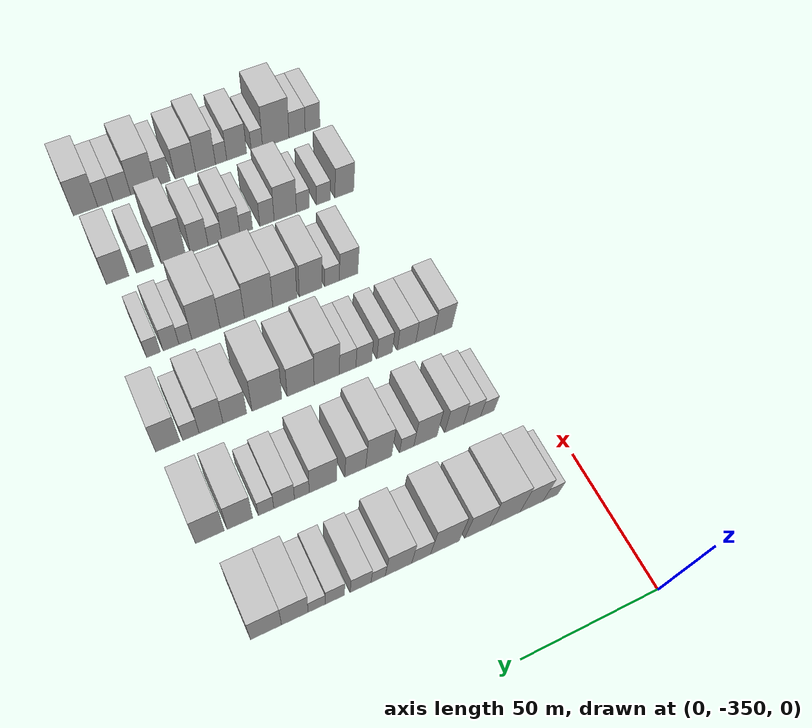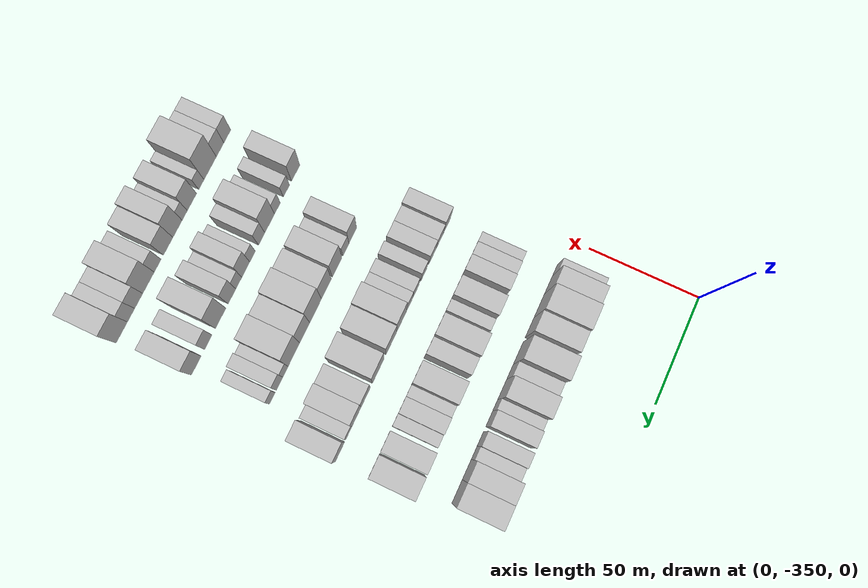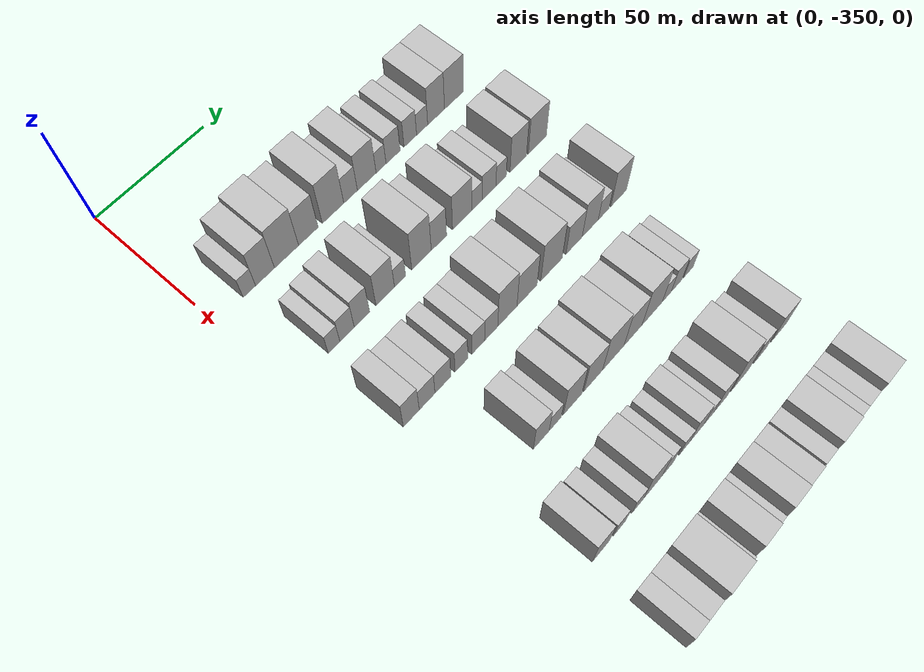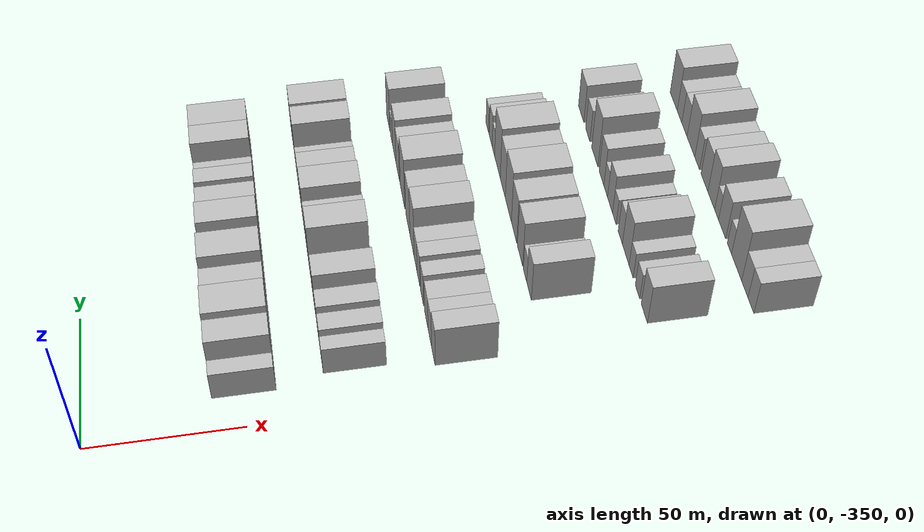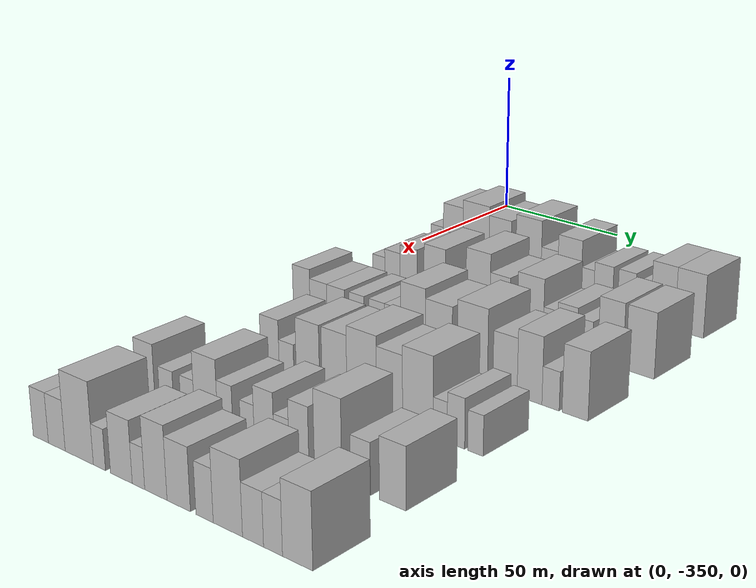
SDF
<sdf version="1.6">
 <world name="default">
  <model name="building_28">
   <static>1</static>
   <pose>50.0000 -334.9886 0 0.000000 0.000000 0.000000</pose>
   <link name="link">
    <pose>0 0 6.00 0 0 0</pose>
    <collision name="collision"><geometry><box><size>20.0000 5.6591 12.0000</size></box></geometry></collision>
    <visual name="visual">
     <cast_shadows>0</cast_shadows>
     <geometry><box><size>20.0000 5.6591 12.0000</size></box></geometry>
     <material>
      <script>
       <uri>model://HANNAS_wall/materials/scripts</uri>
       <uri>model://HANNAS_wall/materials/textures</uri>
       <name>vrc/HANNAS_wall</name>
      </script>
     </material>
    </visual>
   </link>
  </model>
  <model name="building_29">
   <static>1</static>
   <pose>50.0000 -327.7946 0 0.000000 0.000000 0.000000</pose>
   <link name="link">
    <pose>0 0 10.50 0 0 0</pose>
    <collision name="collision"><geometry><box><size>20.0000 8.7289 21.0000</size></box></geometry></collision>
    <visual name="visual">
     <cast_shadows>0</cast_shadows>
     <geometry><box><size>20.0000 8.7289 21.0000</size></box></geometry>
     <material>
      <script>
       <uri>model://HANNAS_wall/materials/scripts</uri>
       <uri>model://HANNAS_wall/materials/textures</uri>
       <name>vrc/HANNAS_wall</name>
      </script>
     </material>
    </visual>
   </link>
  </model>
  <model name="building_30">
   <static>1</static>
   <pose>50.0000 -317.7794 0 0.000000 0.000000 0.000000</pose>
   <link name="link">
    <pose>0 0 12.00 0 0 0</pose>
    <collision name="collision"><geometry><box><size>20.0000 11.3015 24.0000</size></box></geometry></collision>
    <visual name="visual">
     <cast_shadows>0</cast_shadows>
     <geometry><box><size>20.0000 11.3015 24.0000</size></box></geometry>
     <material>
      <script>
       <uri>model://HANNAS_wall/materials/scripts</uri>
       <uri>model://HANNAS_wall/materials/textures</uri>
       <name>vrc/HANNAS_wall</name>
      </script>
     </material>
    </visual>
   </link>
  </model>
  <model name="building_31">
   <static>1</static>
   <pose>50.0000 -307.4623 0 0.000000 0.000000 0.000000</pose>
   <link name="link">
    <pose>0 0 10.50 0 0 0</pose>
    <collision name="collision"><geometry><box><size>20.0000 9.3325 21.0000</size></box></geometry></collision>
    <visual name="visual">
     <cast_shadows>0</cast_shadows>
     <geometry><box><size>20.0000 9.3325 21.0000</size></box></geometry>
     <material>
      <script>
       <uri>model://HANNAS_wall/materials/scripts</uri>
       <uri>model://HANNAS_wall/materials/textures</uri>
       <name>vrc/HANNAS_wall</name>
      </script>
     </material>
    </visual>
   </link>
  </model>
  <model name="building_32">
   <static>1</static>
   <pose>50.0000 -295.5357 0 0.000000 0.000000 0.000000</pose>
   <link name="link">
    <pose>0 0 12.00 0 0 0</pose>
    <collision name="collision"><geometry><box><size>20.0000 10.5207 24.0000</size></box></geometry></collision>
    <visual name="visual">
     <cast_shadows>0</cast_shadows>
     <geometry><box><size>20.0000 10.5207 24.0000</size></box></geometry>
     <material>
      <script>
       <uri>model://HANNAS_wall/materials/scripts</uri>
       <uri>model://HANNAS_wall/materials/textures</uri>
       <name>vrc/HANNAS_wall</name>
      </script>
     </material>
    </visual>
   </link>
  </model>
  <model name="building_33">
   <static>1</static>
   <pose>50.0000 -286.8878 0 0.000000 0.000000 0.000000</pose>
   <link name="link">
    <pose>0 0 7.50 0 0 0</pose>
    <collision name="collision"><geometry><box><size>20.0000 6.7751 15.0000</size></box></geometry></collision>
    <visual name="visual">
     <cast_shadows>0</cast_shadows>
     <geometry><box><size>20.0000 6.7751 15.0000</size></box></geometry>
     <material>
      <script>
       <uri>model://HANNAS_wall/materials/scripts</uri>
       <uri>model://HANNAS_wall/materials/textures</uri>
       <name>vrc/HANNAS_wall</name>
      </script>
     </material>
    </visual>
   </link>
  </model>
  <model name="building_34">
   <static>1</static>
   <pose>50.0000 -278.7941 0 0.000000 0.000000 0.000000</pose>
   <link name="link">
    <pose>0 0 10.50 0 0 0</pose>
    <collision name="collision"><geometry><box><size>20.0000 9.4123 21.0000</size></box></geometry></collision>
    <visual name="visual">
     <cast_shadows>0</cast_shadows>
     <geometry><box><size>20.0000 9.4123 21.0000</size></box></geometry>
     <material>
      <script>
       <uri>model://HANNAS_wall/materials/scripts</uri>
       <uri>model://HANNAS_wall/materials/textures</uri>
       <name>vrc/HANNAS_wall</name>
      </script>
     </material>
    </visual>
   </link>
  </model>
  <model name="building_35">
   <static>1</static>
   <pose>50.0000 -271.5590 0 0.000000 0.000000 0.000000</pose>
   <link name="link">
    <pose>0 0 6.00 0 0 0</pose>
    <collision name="collision"><geometry><box><size>20.0000 5.0578 12.0000</size></box></geometry></collision>
    <visual name="visual">
     <cast_shadows>0</cast_shadows>
     <geometry><box><size>20.0000 5.0578 12.0000</size></box></geometry>
     <material>
      <script>
       <uri>model://HANNAS_wall/materials/scripts</uri>
       <uri>model://HANNAS_wall/materials/textures</uri>
       <name>vrc/HANNAS_wall</name>
      </script>
     </material>
    </visual>
   </link>
  </model>
  <model name="building_36">
   <static>1</static>
   <pose>50.0000 -265.3924 0 0.000000 0.000000 0.000000</pose>
   <link name="link">
    <pose>0 0 7.50 0 0 0</pose>
    <collision name="collision"><geometry><box><size>20.0000 7.2756 15.0000</size></box></geometry></collision>
    <visual name="visual">
     <cast_shadows>0</cast_shadows>
     <geometry><box><size>20.0000 7.2756 15.0000</size></box></geometry>
     <material>
      <script>
       <uri>model://HANNAS_wall/materials/scripts</uri>
       <uri>model://HANNAS_wall/materials/textures</uri>
       <name>vrc/HANNAS_wall</name>
      </script>
     </material>
    </visual>
   </link>
  </model>
  <model name="building_37">
   <static>1</static>
   <pose>50.0000 -256.4576 0 0.000000 0.000000 0.000000</pose>
   <link name="link">
    <pose>0 0 7.50 0 0 0</pose>
    <collision name="collision"><geometry><box><size>20.0000 6.5939 15.0000</size></box></geometry></collision>
    <visual name="visual">
     <cast_shadows>0</cast_shadows>
     <geometry><box><size>20.0000 6.5939 15.0000</size></box></geometry>
     <material>
      <script>
       <uri>model://HANNAS_wall/materials/scripts</uri>
       <uri>model://HANNAS_wall/materials/textures</uri>
       <name>vrc/HANNAS_wall</name>
      </script>
     </material>
    </visual>
   </link>
  </model>
  <model name="building_38">
   <static>1</static>
   <pose>50.0000 -250.2285 0 0.000000 0.000000 0.000000</pose>
   <link name="link">
    <pose>0 0 6.00 0 0 0</pose>
    <collision name="collision"><geometry><box><size>20.0000 5.8642 12.0000</size></box></geometry></collision>
    <visual name="visual">
     <cast_shadows>0</cast_shadows>
     <geometry><box><size>20.0000 5.8642 12.0000</size></box></geometry>
     <material>
      <script>
       <uri>model://HANNAS_wall/materials/scripts</uri>
       <uri>model://HANNAS_wall/materials/textures</uri>
       <name>vrc/HANNAS_wall</name>
      </script>
     </material>
    </visual>
   </link>
  </model>
  <model name="building_39">
   <static>1</static>
   <pose>50.0000 -242.7977 0 0.000000 0.000000 0.000000</pose>
   <link name="link">
    <pose>0 0 10.50 0 0 0</pose>
    <collision name="collision"><geometry><box><size>20.0000 8.9975 21.0000</size></box></geometry></collision>
    <visual name="visual">
     <cast_shadows>0</cast_shadows>
     <geometry><box><size>20.0000 8.9975 21.0000</size></box></geometry>
     <material>
      <script>
       <uri>model://HANNAS_wall/materials/scripts</uri>
       <uri>model://HANNAS_wall/materials/textures</uri>
       <name>vrc/HANNAS_wall</name>
      </script>
     </material>
    </visual>
   </link>
  </model>
  <model name="building_40">
   <static>1</static>
   <pose>50.0000 -233.1098 0 0.000000 0.000000 0.000000</pose>
   <link name="link">
    <pose>0 0 10.50 0 0 0</pose>
    <collision name="collision"><geometry><box><size>20.0000 10.3783 21.0000</size></box></geometry></collision>
    <visual name="visual">
     <cast_shadows>0</cast_shadows>
     <geometry><box><size>20.0000 10.3783 21.0000</size></box></geometry>
     <material>
      <script>
       <uri>model://HANNAS_wall/materials/scripts</uri>
       <uri>model://HANNAS_wall/materials/textures</uri>
       <name>vrc/HANNAS_wall</name>
      </script>
     </material>
    </visual>
   </link>
  </model>
  <model name="building_156">
   <static>1</static>
   <pose>85.0000 -331.0874 0 0.000000 0.000000 0.000000</pose>
   <link name="link">
    <pose>0 0 6.00 0 0 0</pose>
    <collision name="collision"><geometry><box><size>20.0000 5.3848 12.0000</size></box></geometry></collision>
    <visual name="visual">
     <cast_shadows>0</cast_shadows>
     <geometry><box><size>20.0000 5.3848 12.0000</size></box></geometry>
     <material>
      <script>
       <uri>model://HANNAS_wall/materials/scripts</uri>
       <uri>model://HANNAS_wall/materials/textures</uri>
       <name>vrc/HANNAS_wall</name>
      </script>
     </material>
    </visual>
   </link>
  </model>
  <model name="building_157">
   <static>1</static>
   <pose>85.0000 -325.0475 0 0.000000 0.000000 0.000000</pose>
   <link name="link">
    <pose>0 0 7.50 0 0 0</pose>
    <collision name="collision"><geometry><box><size>20.0000 6.6949 15.0000</size></box></geometry></collision>
    <visual name="visual">
     <cast_shadows>0</cast_shadows>
     <geometry><box><size>20.0000 6.6949 15.0000</size></box></geometry>
     <material>
      <script>
       <uri>model://HANNAS_wall/materials/scripts</uri>
       <uri>model://HANNAS_wall/materials/textures</uri>
       <name>vrc/HANNAS_wall</name>
      </script>
     </material>
    </visual>
   </link>
  </model>
  <model name="building_158">
   <static>1</static>
   <pose>85.0000 -318.0757 0 0.000000 0.000000 0.000000</pose>
   <link name="link">
    <pose>0 0 9.00 0 0 0</pose>
    <collision name="collision"><geometry><box><size>20.0000 7.2486 18.0000</size></box></geometry></collision>
    <visual name="visual">
     <cast_shadows>0</cast_shadows>
     <geometry><box><size>20.0000 7.2486 18.0000</size></box></geometry>
     <material>
      <script>
       <uri>model://HANNAS_wall/materials/scripts</uri>
       <uri>model://HANNAS_wall/materials/textures</uri>
       <name>vrc/HANNAS_wall</name>
      </script>
     </material>
    </visual>
   </link>
  </model>
  <model name="building_159">
   <static>1</static>
   <pose>85.0000 -306.9884 0 0.000000 0.000000 0.000000</pose>
   <link name="link">
    <pose>0 0 10.50 0 0 0</pose>
    <collision name="collision"><geometry><box><size>20.0000 8.9261 21.0000</size></box></geometry></collision>
    <visual name="visual">
     <cast_shadows>0</cast_shadows>
     <geometry><box><size>20.0000 8.9261 21.0000</size></box></geometry>
     <material>
      <script>
       <uri>model://HANNAS_wall/materials/scripts</uri>
       <uri>model://HANNAS_wall/materials/textures</uri>
       <name>vrc/HANNAS_wall</name>
      </script>
     </material>
    </visual>
   </link>
  </model>
  <model name="building_160">
   <static>1</static>
   <pose>85.0000 -299.8065 0 0.000000 0.000000 0.000000</pose>
   <link name="link">
    <pose>0 0 6.00 0 0 0</pose>
    <collision name="collision"><geometry><box><size>20.0000 5.4377 12.0000</size></box></geometry></collision>
    <visual name="visual">
     <cast_shadows>0</cast_shadows>
     <geometry><box><size>20.0000 5.4377 12.0000</size></box></geometry>
     <material>
      <script>
       <uri>model://HANNAS_wall/materials/scripts</uri>
       <uri>model://HANNAS_wall/materials/textures</uri>
       <name>vrc/HANNAS_wall</name>
      </script>
     </material>
    </visual>
   </link>
  </model>
  <model name="building_161">
   <static>1</static>
   <pose>85.0000 -289.2377 0 0.000000 0.000000 0.000000</pose>
   <link name="link">
    <pose>0 0 12.00 0 0 0</pose>
    <collision name="collision"><geometry><box><size>20.0000 9.6999 24.0000</size></box></geometry></collision>
    <visual name="visual">
     <cast_shadows>0</cast_shadows>
     <geometry><box><size>20.0000 9.6999 24.0000</size></box></geometry>
     <material>
      <script>
       <uri>model://HANNAS_wall/materials/scripts</uri>
       <uri>model://HANNAS_wall/materials/textures</uri>
       <name>vrc/HANNAS_wall</name>
      </script>
     </material>
    </visual>
   </link>
  </model>
  <model name="building_162">
   <static>1</static>
   <pose>85.0000 -280.5113 0 0.000000 0.000000 0.000000</pose>
   <link name="link">
    <pose>0 0 9.00 0 0 0</pose>
    <collision name="collision"><geometry><box><size>20.0000 7.7529 18.0000</size></box></geometry></collision>
    <visual name="visual">
     <cast_shadows>0</cast_shadows>
     <geometry><box><size>20.0000 7.7529 18.0000</size></box></geometry>
     <material>
      <script>
       <uri>model://HANNAS_wall/materials/scripts</uri>
       <uri>model://HANNAS_wall/materials/textures</uri>
       <name>vrc/HANNAS_wall</name>
      </script>
     </material>
    </visual>
   </link>
  </model>
  <model name="building_163">
   <static>1</static>
   <pose>85.0000 -268.6424 0 0.000000 0.000000 0.000000</pose>
   <link name="link">
    <pose>0 0 10.50 0 0 0</pose>
    <collision name="collision"><geometry><box><size>20.0000 9.9849 21.0000</size></box></geometry></collision>
    <visual name="visual">
     <cast_shadows>0</cast_shadows>
     <geometry><box><size>20.0000 9.9849 21.0000</size></box></geometry>
     <material>
      <script>
       <uri>model://HANNAS_wall/materials/scripts</uri>
       <uri>model://HANNAS_wall/materials/textures</uri>
       <name>vrc/HANNAS_wall</name>
      </script>
     </material>
    </visual>
   </link>
  </model>
  <model name="building_164">
   <static>1</static>
   <pose>85.0000 -260.9876 0 0.000000 0.000000 0.000000</pose>
   <link name="link">
    <pose>0 0 6.00 0 0 0</pose>
    <collision name="collision"><geometry><box><size>20.0000 5.3248 12.0000</size></box></geometry></collision>
    <visual name="visual">
     <cast_shadows>0</cast_shadows>
     <geometry><box><size>20.0000 5.3248 12.0000</size></box></geometry>
     <material>
      <script>
       <uri>model://HANNAS_wall/materials/scripts</uri>
       <uri>model://HANNAS_wall/materials/textures</uri>
       <name>vrc/HANNAS_wall</name>
      </script>
     </material>
    </visual>
   </link>
  </model>
  <model name="building_165">
   <static>1</static>
   <pose>85.0000 -254.6397 0 0.000000 0.000000 0.000000</pose>
   <link name="link">
    <pose>0 0 7.50 0 0 0</pose>
    <collision name="collision"><geometry><box><size>20.0000 7.3711 15.0000</size></box></geometry></collision>
    <visual name="visual">
     <cast_shadows>0</cast_shadows>
     <geometry><box><size>20.0000 7.3711 15.0000</size></box></geometry>
     <material>
      <script>
       <uri>model://HANNAS_wall/materials/scripts</uri>
       <uri>model://HANNAS_wall/materials/textures</uri>
       <name>vrc/HANNAS_wall</name>
      </script>
     </material>
    </visual>
   </link>
  </model>
  <model name="building_166">
   <static>1</static>
   <pose>85.0000 -248.1887 0 0.000000 0.000000 0.000000</pose>
   <link name="link">
    <pose>0 0 6.00 0 0 0</pose>
    <collision name="collision"><geometry><box><size>20.0000 5.5309 12.0000</size></box></geometry></collision>
    <visual name="visual">
     <cast_shadows>0</cast_shadows>
     <geometry><box><size>20.0000 5.5309 12.0000</size></box></geometry>
     <material>
      <script>
       <uri>model://HANNAS_wall/materials/scripts</uri>
       <uri>model://HANNAS_wall/materials/textures</uri>
       <name>vrc/HANNAS_wall</name>
      </script>
     </material>
    </visual>
   </link>
  </model>
  <model name="building_167">
   <static>1</static>
   <pose>85.0000 -238.9296 0 0.000000 0.000000 0.000000</pose>
   <link name="link">
    <pose>0 0 10.50 0 0 0</pose>
    <collision name="collision"><geometry><box><size>20.0000 8.9874 21.0000</size></box></geometry></collision>
    <visual name="visual">
     <cast_shadows>0</cast_shadows>
     <geometry><box><size>20.0000 8.9874 21.0000</size></box></geometry>
     <material>
      <script>
       <uri>model://HANNAS_wall/materials/scripts</uri>
       <uri>model://HANNAS_wall/materials/textures</uri>
       <name>vrc/HANNAS_wall</name>
      </script>
     </material>
    </visual>
   </link>
  </model>
  <model name="building_168">
   <static>1</static>
   <pose>85.0000 -228.4484 0 0.000000 0.000000 0.000000</pose>
   <link name="link">
    <pose>0 0 10.50 0 0 0</pose>
    <collision name="collision"><geometry><box><size>20.0000 9.9750 21.0000</size></box></geometry></collision>
    <visual name="visual">
     <cast_shadows>0</cast_shadows>
     <geometry><box><size>20.0000 9.9750 21.0000</size></box></geometry>
     <material>
      <script>
       <uri>model://HANNAS_wall/materials/scripts</uri>
       <uri>model://HANNAS_wall/materials/textures</uri>
       <name>vrc/HANNAS_wall</name>
      </script>
     </material>
    </visual>
   </link>
  </model>
  <model name="building_264">
   <static>1</static>
   <pose>120.0000 -332.6612 0 0.000000 0.000000 0.000000</pose>
   <link name="link">
    <pose>0 0 9.00 0 0 0</pose>
    <collision name="collision"><geometry><box><size>20.0000 7.3683 18.0000</size></box></geometry></collision>
    <visual name="visual">
     <cast_shadows>0</cast_shadows>
     <geometry><box><size>20.0000 7.3683 18.0000</size></box></geometry>
     <material>
      <script>
       <uri>model://HANNAS_wall/materials/scripts</uri>
       <uri>model://HANNAS_wall/materials/textures</uri>
       <name>vrc/HANNAS_wall</name>
      </script>
     </material>
    </visual>
   </link>
  </model>
  <model name="building_265">
   <static>1</static>
   <pose>120.0000 -325.2985 0 0.000000 0.000000 0.000000</pose>
   <link name="link">
    <pose>0 0 7.50 0 0 0</pose>
    <collision name="collision"><geometry><box><size>20.0000 7.3570 15.0000</size></box></geometry></collision>
    <visual name="visual">
     <cast_shadows>0</cast_shadows>
     <geometry><box><size>20.0000 7.3570 15.0000</size></box></geometry>
     <material>
      <script>
       <uri>model://HANNAS_wall/materials/scripts</uri>
       <uri>model://HANNAS_wall/materials/textures</uri>
       <name>vrc/HANNAS_wall</name>
      </script>
     </material>
    </visual>
   </link>
  </model>
  <model name="building_266">
   <static>1</static>
   <pose>120.0000 -317.8775 0 0.000000 0.000000 0.000000</pose>
   <link name="link">
    <pose>0 0 7.50 0 0 0</pose>
    <collision name="collision"><geometry><box><size>20.0000 7.4851 15.0000</size></box></geometry></collision>
    <visual name="visual">
     <cast_shadows>0</cast_shadows>
     <geometry><box><size>20.0000 7.4851 15.0000</size></box></geometry>
     <material>
      <script>
       <uri>model://HANNAS_wall/materials/scripts</uri>
       <uri>model://HANNAS_wall/materials/textures</uri>
       <name>vrc/HANNAS_wall</name>
      </script>
     </material>
    </visual>
   </link>
  </model>
  <model name="building_267">
   <static>1</static>
   <pose>120.0000 -309.0582 0 0.000000 0.000000 0.000000</pose>
   <link name="link">
    <pose>0 0 7.50 0 0 0</pose>
    <collision name="collision"><geometry><box><size>20.0000 6.1536 15.0000</size></box></geometry></collision>
    <visual name="visual">
     <cast_shadows>0</cast_shadows>
     <geometry><box><size>20.0000 6.1536 15.0000</size></box></geometry>
     <material>
      <script>
       <uri>model://HANNAS_wall/materials/scripts</uri>
       <uri>model://HANNAS_wall/materials/textures</uri>
       <name>vrc/HANNAS_wall</name>
      </script>
     </material>
    </visual>
   </link>
  </model>
  <model name="building_268">
   <static>1</static>
   <pose>120.0000 -300.8452 0 0.000000 0.000000 0.000000</pose>
   <link name="link">
    <pose>0 0 7.50 0 0 0</pose>
    <collision name="collision"><geometry><box><size>20.0000 6.2723 15.0000</size></box></geometry></collision>
    <visual name="visual">
     <cast_shadows>0</cast_shadows>
     <geometry><box><size>20.0000 6.2723 15.0000</size></box></geometry>
     <material>
      <script>
       <uri>model://HANNAS_wall/materials/scripts</uri>
       <uri>model://HANNAS_wall/materials/textures</uri>
       <name>vrc/HANNAS_wall</name>
      </script>
     </material>
    </visual>
   </link>
  </model>
  <model name="building_269">
   <static>1</static>
   <pose>120.0000 -294.4442 0 0.000000 0.000000 0.000000</pose>
   <link name="link">
    <pose>0 0 7.50 0 0 0</pose>
    <collision name="collision"><geometry><box><size>20.0000 6.5297 15.0000</size></box></geometry></collision>
    <visual name="visual">
     <cast_shadows>0</cast_shadows>
     <geometry><box><size>20.0000 6.5297 15.0000</size></box></geometry>
     <material>
      <script>
       <uri>model://HANNAS_wall/materials/scripts</uri>
       <uri>model://HANNAS_wall/materials/textures</uri>
       <name>vrc/HANNAS_wall</name>
      </script>
     </material>
    </visual>
   </link>
  </model>
  <model name="building_270">
   <static>1</static>
   <pose>120.0000 -286.3304 0 0.000000 0.000000 0.000000</pose>
   <link name="link">
    <pose>0 0 12.00 0 0 0</pose>
    <collision name="collision"><geometry><box><size>20.0000 9.6978 24.0000</size></box></geometry></collision>
    <visual name="visual">
     <cast_shadows>0</cast_shadows>
     <geometry><box><size>20.0000 9.6978 24.0000</size></box></geometry>
     <material>
      <script>
       <uri>model://HANNAS_wall/materials/scripts</uri>
       <uri>model://HANNAS_wall/materials/textures</uri>
       <name>vrc/HANNAS_wall</name>
      </script>
     </material>
    </visual>
   </link>
  </model>
  <model name="building_271">
   <static>1</static>
   <pose>120.0000 -276.3362 0 0.000000 0.000000 0.000000</pose>
   <link name="link">
    <pose>0 0 10.50 0 0 0</pose>
    <collision name="collision"><geometry><box><size>20.0000 10.2906 21.0000</size></box></geometry></collision>
    <visual name="visual">
     <cast_shadows>0</cast_shadows>
     <geometry><box><size>20.0000 10.2906 21.0000</size></box></geometry>
     <material>
      <script>
       <uri>model://HANNAS_wall/materials/scripts</uri>
       <uri>model://HANNAS_wall/materials/textures</uri>
       <name>vrc/HANNAS_wall</name>
      </script>
     </material>
    </visual>
   </link>
  </model>
  <model name="building_272">
   <static>1</static>
   <pose>120.0000 -263.5703 0 0.000000 0.000000 0.000000</pose>
   <link name="link">
    <pose>0 0 12.00 0 0 0</pose>
    <collision name="collision"><geometry><box><size>20.0000 11.2413 24.0000</size></box></geometry></collision>
    <visual name="visual">
     <cast_shadows>0</cast_shadows>
     <geometry><box><size>20.0000 11.2413 24.0000</size></box></geometry>
     <material>
      <script>
       <uri>model://HANNAS_wall/materials/scripts</uri>
       <uri>model://HANNAS_wall/materials/textures</uri>
       <name>vrc/HANNAS_wall</name>
      </script>
     </material>
    </visual>
   </link>
  </model>
  <model name="building_273">
   <static>1</static>
   <pose>120.0000 -251.5744 0 0.000000 0.000000 0.000000</pose>
   <link name="link">
    <pose>0 0 9.00 0 0 0</pose>
    <collision name="collision"><geometry><box><size>20.0000 8.7504 18.0000</size></box></geometry></collision>
    <visual name="visual">
     <cast_shadows>0</cast_shadows>
     <geometry><box><size>20.0000 8.7504 18.0000</size></box></geometry>
     <material>
      <script>
       <uri>model://HANNAS_wall/materials/scripts</uri>
       <uri>model://HANNAS_wall/materials/textures</uri>
       <name>vrc/HANNAS_wall</name>
      </script>
     </material>
    </visual>
   </link>
  </model>
  <model name="building_274">
   <static>1</static>
   <pose>120.0000 -242.8021 0 0.000000 0.000000 0.000000</pose>
   <link name="link">
    <pose>0 0 10.50 0 0 0</pose>
    <collision name="collision"><geometry><box><size>20.0000 8.7941 21.0000</size></box></geometry></collision>
    <visual name="visual">
     <cast_shadows>0</cast_shadows>
     <geometry><box><size>20.0000 8.7941 21.0000</size></box></geometry>
     <material>
      <script>
       <uri>model://HANNAS_wall/materials/scripts</uri>
       <uri>model://HANNAS_wall/materials/textures</uri>
       <name>vrc/HANNAS_wall</name>
      </script>
     </material>
    </visual>
   </link>
  </model>
  <model name="building_275">
   <static>1</static>
   <pose>120.0000 -235.4195 0 0.000000 0.000000 0.000000</pose>
   <link name="link">
    <pose>0 0 6.00 0 0 0</pose>
    <collision name="collision"><geometry><box><size>20.0000 5.9712 12.0000</size></box></geometry></collision>
    <visual name="visual">
     <cast_shadows>0</cast_shadows>
     <geometry><box><size>20.0000 5.9712 12.0000</size></box></geometry>
     <material>
      <script>
       <uri>model://HANNAS_wall/materials/scripts</uri>
       <uri>model://HANNAS_wall/materials/textures</uri>
       <name>vrc/HANNAS_wall</name>
      </script>
     </material>
    </visual>
   </link>
  </model>
  <model name="building_276">
   <static>1</static>
   <pose>120.0000 -227.0287 0 0.000000 0.000000 0.000000</pose>
   <link name="link">
    <pose>0 0 10.50 0 0 0</pose>
    <collision name="collision"><geometry><box><size>20.0000 8.8104 21.0000</size></box></geometry></collision>
    <visual name="visual">
     <cast_shadows>0</cast_shadows>
     <geometry><box><size>20.0000 8.8104 21.0000</size></box></geometry>
     <material>
      <script>
       <uri>model://HANNAS_wall/materials/scripts</uri>
       <uri>model://HANNAS_wall/materials/textures</uri>
       <name>vrc/HANNAS_wall</name>
      </script>
     </material>
    </visual>
   </link>
  </model>
  <model name="building_388">
   <static>1</static>
   <pose>155.0000 -311.6682 0 0.000000 0.000000 0.000000</pose>
   <link name="link">
    <pose>0 0 9.00 0 0 0</pose>
    <collision name="collision"><geometry><box><size>20.0000 7.6473 18.0000</size></box></geometry></collision>
    <visual name="visual">
     <cast_shadows>0</cast_shadows>
     <geometry><box><size>20.0000 7.6473 18.0000</size></box></geometry>
     <material>
      <script>
       <uri>model://HANNAS_wall/materials/scripts</uri>
       <uri>model://HANNAS_wall/materials/textures</uri>
       <name>vrc/HANNAS_wall</name>
      </script>
     </material>
    </visual>
   </link>
  </model>
  <model name="building_389">
   <static>1</static>
   <pose>155.0000 -304.8635 0 0.000000 0.000000 0.000000</pose>
   <link name="link">
    <pose>0 0 6.00 0 0 0</pose>
    <collision name="collision"><geometry><box><size>20.0000 5.9621 12.0000</size></box></geometry></collision>
    <visual name="visual">
     <cast_shadows>0</cast_shadows>
     <geometry><box><size>20.0000 5.9621 12.0000</size></box></geometry>
     <material>
      <script>
       <uri>model://HANNAS_wall/materials/scripts</uri>
       <uri>model://HANNAS_wall/materials/textures</uri>
       <name>vrc/HANNAS_wall</name>
      </script>
     </material>
    </visual>
   </link>
  </model>
  <model name="building_390">
   <static>1</static>
   <pose>155.0000 -296.2323 0 0.000000 0.000000 0.000000</pose>
   <link name="link">
    <pose>0 0 10.50 0 0 0</pose>
    <collision name="collision"><geometry><box><size>20.0000 9.3002 21.0000</size></box></geometry></collision>
    <visual name="visual">
     <cast_shadows>0</cast_shadows>
     <geometry><box><size>20.0000 9.3002 21.0000</size></box></geometry>
     <material>
      <script>
       <uri>model://HANNAS_wall/materials/scripts</uri>
       <uri>model://HANNAS_wall/materials/textures</uri>
       <name>vrc/HANNAS_wall</name>
      </script>
     </material>
    </visual>
   </link>
  </model>
  <model name="building_391">
   <static>1</static>
   <pose>155.0000 -285.7749 0 0.000000 0.000000 0.000000</pose>
   <link name="link">
    <pose>0 0 10.50 0 0 0</pose>
    <collision name="collision"><geometry><box><size>20.0000 9.6145 21.0000</size></box></geometry></collision>
    <visual name="visual">
     <cast_shadows>0</cast_shadows>
     <geometry><box><size>20.0000 9.6145 21.0000</size></box></geometry>
     <material>
      <script>
       <uri>model://HANNAS_wall/materials/scripts</uri>
       <uri>model://HANNAS_wall/materials/textures</uri>
       <name>vrc/HANNAS_wall</name>
      </script>
     </material>
    </visual>
   </link>
  </model>
  <model name="building_392">
   <static>1</static>
   <pose>155.0000 -275.3548 0 0.000000 0.000000 0.000000</pose>
   <link name="link">
    <pose>0 0 12.00 0 0 0</pose>
    <collision name="collision"><geometry><box><size>20.0000 11.2258 24.0000</size></box></geometry></collision>
    <visual name="visual">
     <cast_shadows>0</cast_shadows>
     <geometry><box><size>20.0000 11.2258 24.0000</size></box></geometry>
     <material>
      <script>
       <uri>model://HANNAS_wall/materials/scripts</uri>
       <uri>model://HANNAS_wall/materials/textures</uri>
       <name>vrc/HANNAS_wall</name>
      </script>
     </material>
    </visual>
   </link>
  </model>
  <model name="building_393">
   <static>1</static>
   <pose>155.0000 -264.9722 0 0.000000 0.000000 0.000000</pose>
   <link name="link">
    <pose>0 0 10.50 0 0 0</pose>
    <collision name="collision"><geometry><box><size>20.0000 9.5394 21.0000</size></box></geometry></collision>
    <visual name="visual">
     <cast_shadows>0</cast_shadows>
     <geometry><box><size>20.0000 9.5394 21.0000</size></box></geometry>
     <material>
      <script>
       <uri>model://HANNAS_wall/materials/scripts</uri>
       <uri>model://HANNAS_wall/materials/textures</uri>
       <name>vrc/HANNAS_wall</name>
      </script>
     </material>
    </visual>
   </link>
  </model>
  <model name="building_394">
   <static>1</static>
   <pose>155.0000 -254.7200 0 0.000000 0.000000 0.000000</pose>
   <link name="link">
    <pose>0 0 12.00 0 0 0</pose>
    <collision name="collision"><geometry><box><size>20.0000 10.9650 24.0000</size></box></geometry></collision>
    <visual name="visual">
     <cast_shadows>0</cast_shadows>
     <geometry><box><size>20.0000 10.9650 24.0000</size></box></geometry>
     <material>
      <script>
       <uri>model://HANNAS_wall/materials/scripts</uri>
       <uri>model://HANNAS_wall/materials/textures</uri>
       <name>vrc/HANNAS_wall</name>
      </script>
     </material>
    </visual>
   </link>
  </model>
  <model name="building_395">
   <static>1</static>
   <pose>155.0000 -246.7789 0 0.000000 0.000000 0.000000</pose>
   <link name="link">
    <pose>0 0 6.00 0 0 0</pose>
    <collision name="collision"><geometry><box><size>20.0000 4.9172 12.0000</size></box></geometry></collision>
    <visual name="visual">
     <cast_shadows>0</cast_shadows>
     <geometry><box><size>20.0000 4.9172 12.0000</size></box></geometry>
     <material>
      <script>
       <uri>model://HANNAS_wall/materials/scripts</uri>
       <uri>model://HANNAS_wall/materials/textures</uri>
       <name>vrc/HANNAS_wall</name>
      </script>
     </material>
    </visual>
   </link>
  </model>
  <model name="building_396">
   <static>1</static>
   <pose>155.0000 -241.3033 0 0.000000 0.000000 0.000000</pose>
   <link name="link">
    <pose>0 0 7.50 0 0 0</pose>
    <collision name="collision"><geometry><box><size>20.0000 6.0340 15.0000</size></box></geometry></collision>
    <visual name="visual">
     <cast_shadows>0</cast_shadows>
     <geometry><box><size>20.0000 6.0340 15.0000</size></box></geometry>
     <material>
      <script>
       <uri>model://HANNAS_wall/materials/scripts</uri>
       <uri>model://HANNAS_wall/materials/textures</uri>
       <name>vrc/HANNAS_wall</name>
      </script>
     </material>
    </visual>
   </link>
  </model>
  <model name="building_397">
   <static>1</static>
   <pose>155.0000 -234.6429 0 0.000000 0.000000 0.000000</pose>
   <link name="link">
    <pose>0 0 6.00 0 0 0</pose>
    <collision name="collision"><geometry><box><size>20.0000 5.2868 12.0000</size></box></geometry></collision>
    <visual name="visual">
     <cast_shadows>0</cast_shadows>
     <geometry><box><size>20.0000 5.2868 12.0000</size></box></geometry>
     <material>
      <script>
       <uri>model://HANNAS_wall/materials/scripts</uri>
       <uri>model://HANNAS_wall/materials/textures</uri>
       <name>vrc/HANNAS_wall</name>
      </script>
     </material>
    </visual>
   </link>
  </model>
  <model name="building_512">
   <static>1</static>
   <pose>190.0000 -326.6447 0 0.000000 0.000000 0.000000</pose>
   <link name="link">
    <pose>0 0 9.00 0 0 0</pose>
    <collision name="collision"><geometry><box><size>20.0000 8.1323 18.0000</size></box></geometry></collision>
    <visual name="visual">
     <cast_shadows>0</cast_shadows>
     <geometry><box><size>20.0000 8.1323 18.0000</size></box></geometry>
     <material>
      <script>
       <uri>model://HANNAS_wall/materials/scripts</uri>
       <uri>model://HANNAS_wall/materials/textures</uri>
       <name>vrc/HANNAS_wall</name>
      </script>
     </material>
    </visual>
   </link>
  </model>
  <model name="building_513">
   <static>1</static>
   <pose>190.0000 -317.6054 0 0.000000 0.000000 0.000000</pose>
   <link name="link">
    <pose>0 0 6.00 0 0 0</pose>
    <collision name="collision"><geometry><box><size>20.0000 5.9464 12.0000</size></box></geometry></collision>
    <visual name="visual">
     <cast_shadows>0</cast_shadows>
     <geometry><box><size>20.0000 5.9464 12.0000</size></box></geometry>
     <material>
      <script>
       <uri>model://HANNAS_wall/materials/scripts</uri>
       <uri>model://HANNAS_wall/materials/textures</uri>
       <name>vrc/HANNAS_wall</name>
      </script>
     </material>
    </visual>
   </link>
  </model>
  <model name="building_514">
   <static>1</static>
   <pose>190.0000 -308.8625 0 0.000000 0.000000 0.000000</pose>
   <link name="link">
    <pose>0 0 6.00 0 0 0</pose>
    <collision name="collision"><geometry><box><size>20.0000 5.5393 12.0000</size></box></geometry></collision>
    <visual name="visual">
     <cast_shadows>0</cast_shadows>
     <geometry><box><size>20.0000 5.5393 12.0000</size></box></geometry>
     <material>
      <script>
       <uri>model://HANNAS_wall/materials/scripts</uri>
       <uri>model://HANNAS_wall/materials/textures</uri>
       <name>vrc/HANNAS_wall</name>
      </script>
     </material>
    </visual>
   </link>
  </model>
  <model name="building_515">
   <static>1</static>
   <pose>190.0000 -301.4017 0 0.000000 0.000000 0.000000</pose>
   <link name="link">
    <pose>0 0 10.50 0 0 0</pose>
    <collision name="collision"><geometry><box><size>20.0000 9.3823 21.0000</size></box></geometry></collision>
    <visual name="visual">
     <cast_shadows>0</cast_shadows>
     <geometry><box><size>20.0000 9.3823 21.0000</size></box></geometry>
     <material>
      <script>
       <uri>model://HANNAS_wall/materials/scripts</uri>
       <uri>model://HANNAS_wall/materials/textures</uri>
       <name>vrc/HANNAS_wall</name>
      </script>
     </material>
    </visual>
   </link>
  </model>
  <model name="building_516">
   <static>1</static>
   <pose>190.0000 -293.7067 0 0.000000 0.000000 0.000000</pose>
   <link name="link">
    <pose>0 0 7.50 0 0 0</pose>
    <collision name="collision"><geometry><box><size>20.0000 6.0078 15.0000</size></box></geometry></collision>
    <visual name="visual">
     <cast_shadows>0</cast_shadows>
     <geometry><box><size>20.0000 6.0078 15.0000</size></box></geometry>
     <material>
      <script>
       <uri>model://HANNAS_wall/materials/scripts</uri>
       <uri>model://HANNAS_wall/materials/textures</uri>
       <name>vrc/HANNAS_wall</name>
      </script>
     </material>
    </visual>
   </link>
  </model>
  <model name="building_517">
   <static>1</static>
   <pose>190.0000 -285.0733 0 0.000000 0.000000 0.000000</pose>
   <link name="link">
    <pose>0 0 6.00 0 0 0</pose>
    <collision name="collision"><geometry><box><size>20.0000 5.2590 12.0000</size></box></geometry></collision>
    <visual name="visual">
     <cast_shadows>0</cast_shadows>
     <geometry><box><size>20.0000 5.2590 12.0000</size></box></geometry>
     <material>
      <script>
       <uri>model://HANNAS_wall/materials/scripts</uri>
       <uri>model://HANNAS_wall/materials/textures</uri>
       <name>vrc/HANNAS_wall</name>
      </script>
     </material>
    </visual>
   </link>
  </model>
  <model name="building_518">
   <static>1</static>
   <pose>190.0000 -278.7138 0 0.000000 0.000000 0.000000</pose>
   <link name="link">
    <pose>0 0 9.00 0 0 0</pose>
    <collision name="collision"><geometry><box><size>20.0000 7.4600 18.0000</size></box></geometry></collision>
    <visual name="visual">
     <cast_shadows>0</cast_shadows>
     <geometry><box><size>20.0000 7.4600 18.0000</size></box></geometry>
     <material>
      <script>
       <uri>model://HANNAS_wall/materials/scripts</uri>
       <uri>model://HANNAS_wall/materials/textures</uri>
       <name>vrc/HANNAS_wall</name>
      </script>
     </material>
    </visual>
   </link>
  </model>
  <model name="building_519">
   <static>1</static>
   <pose>190.0000 -272.2002 0 0.000000 0.000000 0.000000</pose>
   <link name="link">
    <pose>0 0 6.00 0 0 0</pose>
    <collision name="collision"><geometry><box><size>20.0000 5.5671 12.0000</size></box></geometry></collision>
    <visual name="visual">
     <cast_shadows>0</cast_shadows>
     <geometry><box><size>20.0000 5.5671 12.0000</size></box></geometry>
     <material>
      <script>
       <uri>model://HANNAS_wall/materials/scripts</uri>
       <uri>model://HANNAS_wall/materials/textures</uri>
       <name>vrc/HANNAS_wall</name>
      </script>
     </material>
    </visual>
   </link>
  </model>
  <model name="building_520">
   <static>1</static>
   <pose>190.0000 -265.8040 0 0.000000 0.000000 0.000000</pose>
   <link name="link">
    <pose>0 0 9.00 0 0 0</pose>
    <collision name="collision"><geometry><box><size>20.0000 7.2254 18.0000</size></box></geometry></collision>
    <visual name="visual">
     <cast_shadows>0</cast_shadows>
     <geometry><box><size>20.0000 7.2254 18.0000</size></box></geometry>
     <material>
      <script>
       <uri>model://HANNAS_wall/materials/scripts</uri>
       <uri>model://HANNAS_wall/materials/textures</uri>
       <name>vrc/HANNAS_wall</name>
      </script>
     </material>
    </visual>
   </link>
  </model>
  <model name="building_521">
   <static>1</static>
   <pose>190.0000 -255.3540 0 0.000000 0.000000 0.000000</pose>
   <link name="link">
    <pose>0 0 12.00 0 0 0</pose>
    <collision name="collision"><geometry><box><size>20.0000 9.6747 24.0000</size></box></geometry></collision>
    <visual name="visual">
     <cast_shadows>0</cast_shadows>
     <geometry><box><size>20.0000 9.6747 24.0000</size></box></geometry>
     <material>
      <script>
       <uri>model://HANNAS_wall/materials/scripts</uri>
       <uri>model://HANNAS_wall/materials/textures</uri>
       <name>vrc/HANNAS_wall</name>
      </script>
     </material>
    </visual>
   </link>
  </model>
  <model name="building_522">
   <static>1</static>
   <pose>190.0000 -244.0895 0 0.000000 0.000000 0.000000</pose>
   <link name="link">
    <pose>0 0 7.50 0 0 0</pose>
    <collision name="collision"><geometry><box><size>20.0000 6.8542 15.0000</size></box></geometry></collision>
    <visual name="visual">
     <cast_shadows>0</cast_shadows>
     <geometry><box><size>20.0000 6.8542 15.0000</size></box></geometry>
     <material>
      <script>
       <uri>model://HANNAS_wall/materials/scripts</uri>
       <uri>model://HANNAS_wall/materials/textures</uri>
       <name>vrc/HANNAS_wall</name>
      </script>
     </material>
    </visual>
   </link>
  </model>
  <model name="building_523">
   <static>1</static>
   <pose>190.0000 -233.2393 0 0.000000 0.000000 0.000000</pose>
   <link name="link">
    <pose>0 0 9.00 0 0 0</pose>
    <collision name="collision"><geometry><box><size>20.0000 8.8461 18.0000</size></box></geometry></collision>
    <visual name="visual">
     <cast_shadows>0</cast_shadows>
     <geometry><box><size>20.0000 8.8461 18.0000</size></box></geometry>
     <material>
      <script>
       <uri>model://HANNAS_wall/materials/scripts</uri>
       <uri>model://HANNAS_wall/materials/textures</uri>
       <name>vrc/HANNAS_wall</name>
      </script>
     </material>
    </visual>
   </link>
  </model>
  <model name="building_635">
   <static>1</static>
   <pose>225.0000 -328.9718 0 0.000000 0.000000 0.000000</pose>
   <link name="link">
    <pose>0 0 7.50 0 0 0</pose>
    <collision name="collision"><geometry><box><size>20.0000 6.6023 15.0000</size></box></geometry></collision>
    <visual name="visual">
     <cast_shadows>0</cast_shadows>
     <geometry><box><size>20.0000 6.6023 15.0000</size></box></geometry>
     <material>
      <script>
       <uri>model://HANNAS_wall/materials/scripts</uri>
       <uri>model://HANNAS_wall/materials/textures</uri>
       <name>vrc/HANNAS_wall</name>
      </script>
     </material>
    </visual>
   </link>
  </model>
  <model name="building_636">
   <static>1</static>
   <pose>225.0000 -322.0897 0 0.000000 0.000000 0.000000</pose>
   <link name="link">
    <pose>0 0 7.50 0 0 0</pose>
    <collision name="collision"><geometry><box><size>20.0000 7.1620 15.0000</size></box></geometry></collision>
    <visual name="visual">
     <cast_shadows>0</cast_shadows>
     <geometry><box><size>20.0000 7.1620 15.0000</size></box></geometry>
     <material>
      <script>
       <uri>model://HANNAS_wall/materials/scripts</uri>
       <uri>model://HANNAS_wall/materials/textures</uri>
       <name>vrc/HANNAS_wall</name>
      </script>
     </material>
    </visual>
   </link>
  </model>
  <model name="building_637">
   <static>1</static>
   <pose>225.0000 -312.6628 0 0.000000 0.000000 0.000000</pose>
   <link name="link">
    <pose>0 0 12.00 0 0 0</pose>
    <collision name="collision"><geometry><box><size>20.0000 11.6916 24.0000</size></box></geometry></collision>
    <visual name="visual">
     <cast_shadows>0</cast_shadows>
     <geometry><box><size>20.0000 11.6916 24.0000</size></box></geometry>
     <material>
      <script>
       <uri>model://HANNAS_wall/materials/scripts</uri>
       <uri>model://HANNAS_wall/materials/textures</uri>
       <name>vrc/HANNAS_wall</name>
      </script>
     </material>
    </visual>
   </link>
  </model>
  <model name="building_638">
   <static>1</static>
   <pose>225.0000 -304.3476 0 0.000000 0.000000 0.000000</pose>
   <link name="link">
    <pose>0 0 6.00 0 0 0</pose>
    <collision name="collision"><geometry><box><size>20.0000 4.9389 12.0000</size></box></geometry></collision>
    <visual name="visual">
     <cast_shadows>0</cast_shadows>
     <geometry><box><size>20.0000 4.9389 12.0000</size></box></geometry>
     <material>
      <script>
       <uri>model://HANNAS_wall/materials/scripts</uri>
       <uri>model://HANNAS_wall/materials/textures</uri>
       <name>vrc/HANNAS_wall</name>
      </script>
     </material>
    </visual>
   </link>
  </model>
  <model name="building_639">
   <static>1</static>
   <pose>225.0000 -295.5633 0 0.000000 0.000000 0.000000</pose>
   <link name="link">
    <pose>0 0 9.00 0 0 0</pose>
    <collision name="collision"><geometry><box><size>20.0000 8.6298 18.0000</size></box></geometry></collision>
    <visual name="visual">
     <cast_shadows>0</cast_shadows>
     <geometry><box><size>20.0000 8.6298 18.0000</size></box></geometry>
     <material>
      <script>
       <uri>model://HANNAS_wall/materials/scripts</uri>
       <uri>model://HANNAS_wall/materials/textures</uri>
       <name>vrc/HANNAS_wall</name>
      </script>
     </material>
    </visual>
   </link>
  </model>
  <model name="building_640">
   <static>1</static>
   <pose>225.0000 -288.8346 0 0.000000 0.000000 0.000000</pose>
   <link name="link">
    <pose>0 0 6.00 0 0 0</pose>
    <collision name="collision"><geometry><box><size>20.0000 4.8276 12.0000</size></box></geometry></collision>
    <visual name="visual">
     <cast_shadows>0</cast_shadows>
     <geometry><box><size>20.0000 4.8276 12.0000</size></box></geometry>
     <material>
      <script>
       <uri>model://HANNAS_wall/materials/scripts</uri>
       <uri>model://HANNAS_wall/materials/textures</uri>
       <name>vrc/HANNAS_wall</name>
      </script>
     </material>
    </visual>
   </link>
  </model>
  <model name="building_641">
   <static>1</static>
   <pose>225.0000 -282.1730 0 0.000000 0.000000 0.000000</pose>
   <link name="link">
    <pose>0 0 10.50 0 0 0</pose>
    <collision name="collision"><geometry><box><size>20.0000 8.4956 21.0000</size></box></geometry></collision>
    <visual name="visual">
     <cast_shadows>0</cast_shadows>
     <geometry><box><size>20.0000 8.4956 21.0000</size></box></geometry>
     <material>
      <script>
       <uri>model://HANNAS_wall/materials/scripts</uri>
       <uri>model://HANNAS_wall/materials/textures</uri>
       <name>vrc/HANNAS_wall</name>
      </script>
     </material>
    </visual>
   </link>
  </model>
  <model name="building_642">
   <static>1</static>
   <pose>225.0000 -273.5830 0 0.000000 0.000000 0.000000</pose>
   <link name="link">
    <pose>0 0 9.00 0 0 0</pose>
    <collision name="collision"><geometry><box><size>20.0000 8.6844 18.0000</size></box></geometry></collision>
    <visual name="visual">
     <cast_shadows>0</cast_shadows>
     <geometry><box><size>20.0000 8.6844 18.0000</size></box></geometry>
     <material>
      <script>
       <uri>model://HANNAS_wall/materials/scripts</uri>
       <uri>model://HANNAS_wall/materials/textures</uri>
       <name>vrc/HANNAS_wall</name>
      </script>
     </material>
    </visual>
   </link>
  </model>
  <model name="building_643">
   <static>1</static>
   <pose>225.0000 -264.1235 0 0.000000 0.000000 0.000000</pose>
   <link name="link">
    <pose>0 0 7.50 0 0 0</pose>
    <collision name="collision"><geometry><box><size>20.0000 6.2347 15.0000</size></box></geometry></collision>
    <visual name="visual">
     <cast_shadows>0</cast_shadows>
     <geometry><box><size>20.0000 6.2347 15.0000</size></box></geometry>
     <material>
      <script>
       <uri>model://HANNAS_wall/materials/scripts</uri>
       <uri>model://HANNAS_wall/materials/textures</uri>
       <name>vrc/HANNAS_wall</name>
      </script>
     </material>
    </visual>
   </link>
  </model>
  <model name="building_644">
   <static>1</static>
   <pose>225.0000 -255.8572 0 0.000000 0.000000 0.000000</pose>
   <link name="link">
    <pose>0 0 10.50 0 0 0</pose>
    <collision name="collision"><geometry><box><size>20.0000 10.2980 21.0000</size></box></geometry></collision>
    <visual name="visual">
     <cast_shadows>0</cast_shadows>
     <geometry><box><size>20.0000 10.2980 21.0000</size></box></geometry>
     <material>
      <script>
       <uri>model://HANNAS_wall/materials/scripts</uri>
       <uri>model://HANNAS_wall/materials/textures</uri>
       <name>vrc/HANNAS_wall</name>
      </script>
     </material>
    </visual>
   </link>
  </model>
  <model name="building_645">
   <static>1</static>
   <pose>225.0000 -247.1084 0 0.000000 0.000000 0.000000</pose>
   <link name="link">
    <pose>0 0 7.50 0 0 0</pose>
    <collision name="collision"><geometry><box><size>20.0000 7.1996 15.0000</size></box></geometry></collision>
    <visual name="visual">
     <cast_shadows>0</cast_shadows>
     <geometry><box><size>20.0000 7.1996 15.0000</size></box></geometry>
     <material>
      <script>
       <uri>model://HANNAS_wall/materials/scripts</uri>
       <uri>model://HANNAS_wall/materials/textures</uri>
       <name>vrc/HANNAS_wall</name>
      </script>
     </material>
    </visual>
   </link>
  </model>
  <model name="building_646">
   <static>1</static>
   <pose>225.0000 -240.3390 0 0.000000 0.000000 0.000000</pose>
   <link name="link">
    <pose>0 0 7.50 0 0 0</pose>
    <collision name="collision"><geometry><box><size>20.0000 6.3391 15.0000</size></box></geometry></collision>
    <visual name="visual">
     <cast_shadows>0</cast_shadows>
     <geometry><box><size>20.0000 6.3391 15.0000</size></box></geometry>
     <material>
      <script>
       <uri>model://HANNAS_wall/materials/scripts</uri>
       <uri>model://HANNAS_wall/materials/textures</uri>
       <name>vrc/HANNAS_wall</name>
      </script>
     </material>
    </visual>
   </link>
  </model>
  <model name="building_647">
   <static>1</static>
   <pose>225.0000 -232.2111 0 0.000000 0.000000 0.000000</pose>
   <link name="link">
    <pose>0 0 10.50 0 0 0</pose>
    <collision name="collision"><geometry><box><size>20.0000 9.9167 21.0000</size></box></geometry></collision>
    <visual name="visual">
     <cast_shadows>0</cast_shadows>
     <geometry><box><size>20.0000 9.9167 21.0000</size></box></geometry>
     <material>
      <script>
       <uri>model://HANNAS_wall/materials/scripts</uri>
       <uri>model://HANNAS_wall/materials/textures</uri>
       <name>vrc/HANNAS_wall</name>
      </script>
     </material>
    </visual>
   </link>
  </model>
 </world>
</sdf>
